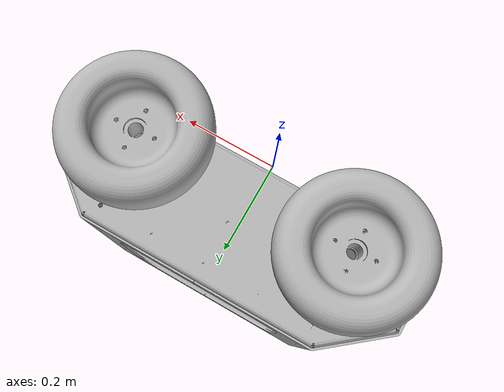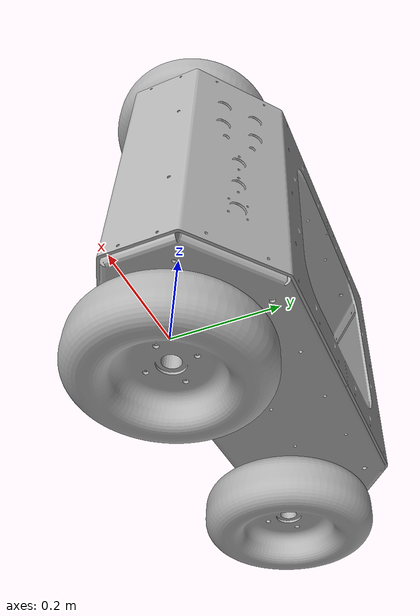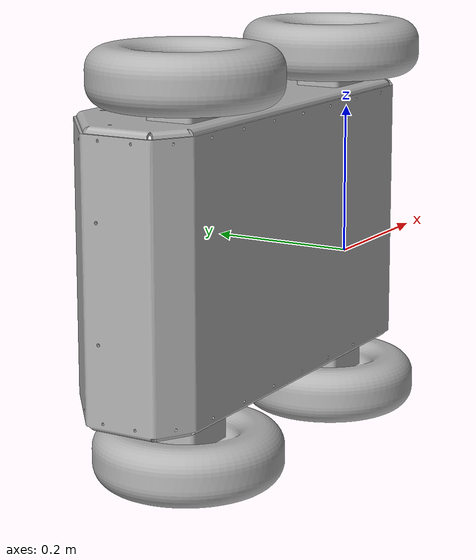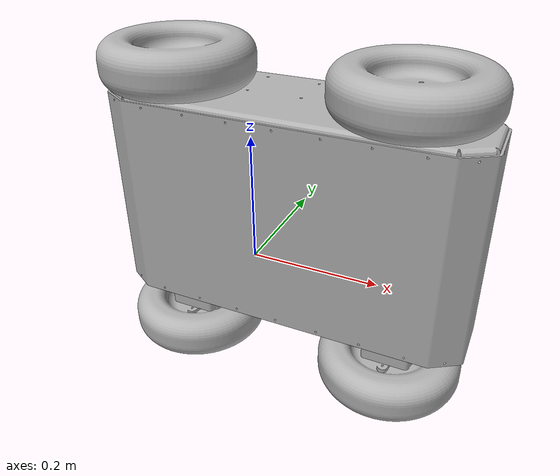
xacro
<?xml version="1.0" ?>
<robot name="diff_H80" xmlns:xacro="http://www.ros.org/wiki/xacro">

<xacro:include filename="$(find diff_H80_description)/urdf/materials.xacro" />
<xacro:include filename="$(find diff_H80_description)/urdf/diff_H80.trans" />
<xacro:include filename="$(find diff_H80_description)/urdf/diff_H80.gazebo" />

<link name="base_link">
  <inertial>
    <origin xyz="-0.0007097470847777941 0.1606544159292186 -6.0780571919646865e-05" rpy="0 0 0"/>
    <mass value="3.422105761645047"/>
    <inertia ixx="0.102447" iyy="0.239163" izz="0.185501" ixy="0.000207" iyz="1.8e-05" ixz="5.8e-05"/>
  </inertial>
  <visual>
    <origin xyz="0 0 0" rpy="0 0 0"/>
    <geometry>
      <mesh filename="package://diff_H80_description/meshes/base_link.stl" scale="0.001 0.001 0.001"/>
    </geometry>
    <material name="silver"/>
  </visual>
  <collision>
    <origin xyz="0 0 0" rpy="0 0 0"/>
    <geometry>
      <mesh filename="package://diff_H80_description/meshes/base_link.stl" scale="0.001 0.001 0.001"/>
    </geometry>
  </collision>
</link>

<link name="wheel_1">
  <inertial>
    <origin xyz="4.939911341095282e-09 2.2610133487699358e-08 0.05271472714665093" rpy="0 0 0"/>
    <mass value="2.9832346042890965"/>
    <inertia ixx="0.015656" iyy="0.015719" izz="0.02856" ixy="-0.0" iyz="0.0" ixz="-0.0"/>
  </inertial>
  <visual>
    <origin xyz="0.2 -0.13 -0.2" rpy="0 0 0"/>
    <geometry>
      <mesh filename="package://diff_H80_description/meshes/wheel_1.stl" scale="0.001 0.001 0.001"/>
    </geometry>
    <material name="silver"/>
  </visual>
  <collision>
    <origin xyz="0.2 -0.13 -0.2" rpy="0 0 0"/>
    <geometry>
      <mesh filename="package://diff_H80_description/meshes/wheel_1.stl" scale="0.001 0.001 0.001"/>
    </geometry>
  </collision>
</link>

<link name="wheel_2">
  <inertial>
    <origin xyz="4.939911507628736e-09 2.2610133487699358e-08 0.05271472714665093" rpy="0 0 0"/>
    <mass value="2.9832346042890965"/>
    <inertia ixx="0.015656" iyy="0.015719" izz="0.02856" ixy="-0.0" iyz="0.0" ixz="-0.0"/>
  </inertial>
  <visual>
    <origin xyz="-0.2 -0.13 -0.2" rpy="0 0 0"/>
    <geometry>
      <mesh filename="package://diff_H80_description/meshes/wheel_2.stl" scale="0.001 0.001 0.001"/>
    </geometry>
    <material name="silver"/>
  </visual>
  <collision>
    <origin xyz="-0.2 -0.13 -0.2" rpy="0 0 0"/>
    <geometry>
      <mesh filename="package://diff_H80_description/meshes/wheel_2.stl" scale="0.001 0.001 0.001"/>
    </geometry>
  </collision>
</link>

<link name="wheel_4">
  <inertial>
    <origin xyz="4.939911507628736e-09 -2.2610133459943782e-08 -0.05271472714665093" rpy="0 0 0"/>
    <mass value="2.9832346042890965"/>
    <inertia ixx="0.015656" iyy="0.015719" izz="0.02856" ixy="0.0" iyz="0.0" ixz="0.0"/>
  </inertial>
  <visual>
    <origin xyz="-0.2 -0.13 0.2" rpy="0 0 0"/>
    <geometry>
      <mesh filename="package://diff_H80_description/meshes/wheel_4.stl" scale="0.001 0.001 0.001"/>
    </geometry>
    <material name="silver"/>
  </visual>
  <collision>
    <origin xyz="-0.2 -0.13 0.2" rpy="0 0 0"/>
    <geometry>
      <mesh filename="package://diff_H80_description/meshes/wheel_4.stl" scale="0.001 0.001 0.001"/>
    </geometry>
  </collision>
</link>

<link name="wheel_3">
  <inertial>
    <origin xyz="4.939911341095282e-09 -2.2610133459943782e-08 -0.05271472714665093" rpy="0 0 0"/>
    <mass value="2.9832346042890965"/>
    <inertia ixx="0.015656" iyy="0.015719" izz="0.02856" ixy="0.0" iyz="0.0" ixz="0.0"/>
  </inertial>
  <visual>
    <origin xyz="0.2 -0.13 0.2" rpy="0 0 0"/>
    <geometry>
      <mesh filename="package://diff_H80_description/meshes/wheel_3.stl" scale="0.001 0.001 0.001"/>
    </geometry>
    <material name="silver"/>
  </visual>
  <collision>
    <origin xyz="0.2 -0.13 0.2" rpy="0 0 0"/>
    <geometry>
      <mesh filename="package://diff_H80_description/meshes/wheel_3.stl" scale="0.001 0.001 0.001"/>
    </geometry>
  </collision>
</link>

<joint name="diff_left_front" type="continuous">
  <origin xyz="-0.2 0.13 0.2" rpy="0 0 0"/>
  <parent link="base_link"/>
  <child link="wheel_1"/>
  <axis xyz="0.0 0.0 -1.0"/>
</joint>

<joint name="diff_left_rear" type="continuous">
  <origin xyz="0.2 0.13 0.2" rpy="0 0 0"/>
  <parent link="base_link"/>
  <child link="wheel_2"/>
  <axis xyz="0.0 0.0 -1.0"/>
</joint>

<joint name="diff_right_rear" type="continuous">
  <origin xyz="0.2 0.13 -0.2" rpy="0 0 0"/>
  <parent link="base_link"/>
  <child link="wheel_4"/>
  <axis xyz="0.0 0.0 1.0"/>
</joint>

<joint name="diff_right_front" type="continuous">
  <origin xyz="-0.2 0.13 -0.2" rpy="0 0 0"/>
  <parent link="base_link"/>
  <child link="wheel_3"/>
  <axis xyz="0.0 0.0 1.0"/>
</joint>

</robot>

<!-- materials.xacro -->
<robot name="diff_H80" xmlns:xacro="http://www.ros.org/wiki/xacro" >

<material name="silver">
  <color rgba="0.700 0.700 0.700 1.000"/>
</material>

</robot>

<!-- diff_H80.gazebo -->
<robot name="diff_H80" xmlns:xacro="http://www.ros.org/wiki/xacro" >

<xacro:property name="body_color" value="Gazebo/Black" />
<xacro:property name="body_color_1" value="Gazebo/Orange" />
<gazebo>
  <plugin filename="libgazebo_ros_control.so" name="control">
  <robotNamespace>/diff_H80</robotNamespace>
  <robotSimType>gazebo_ros_control/DefaultRobotHWSim</robotSimType>
  </plugin>
</gazebo>
<gazebo reference="base_link">
  <material>${body_color_1}</material>
  <mu1>0.2</mu1>
  <mu2>0.2</mu2>
  <selfCollide>true</selfCollide>
  <gravity>true</gravity>
</gazebo>

<gazebo reference="wheel_1">
  <material>${body_color}</material>
  <mu1>0.2</mu1>
  <mu2>0.2</mu2>
  <selfCollide>true</selfCollide>
</gazebo>

<gazebo reference="wheel_2">
  <material>${body_color}</material>
  <mu1>0.2</mu1>
  <mu2>0.2</mu2>
  <selfCollide>true</selfCollide>
</gazebo>

<gazebo reference="wheel_4">
  <material>${body_color}</material>
  <mu1>0.2</mu1>
  <mu2>0.2</mu2>
  <selfCollide>true</selfCollide>
</gazebo>

<gazebo reference="wheel_3">
  <material>${body_color}</material>
  <mu1>0.2</mu1>
  <mu2>0.2</mu2>
  <selfCollide>true</selfCollide>
</gazebo>

</robot>
